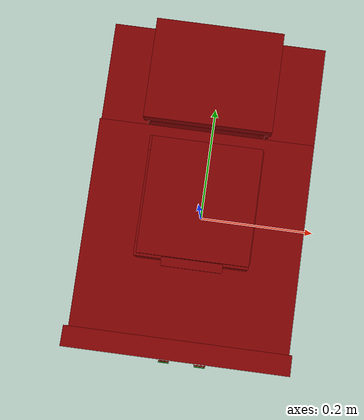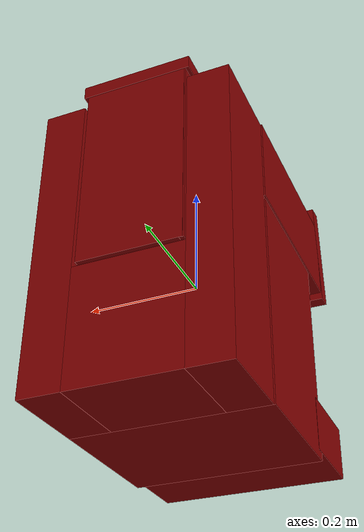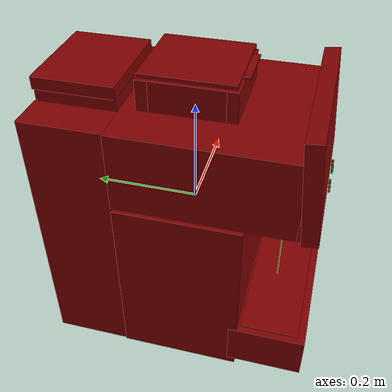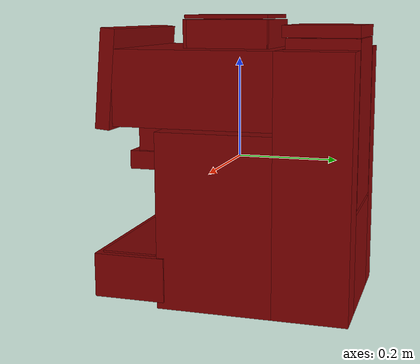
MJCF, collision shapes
<?xml version='1.0' encoding='UTF-8'?>
<mujoco model="model">
  <compiler angle="radian"/>
  <asset>
    <mesh file="visuals/Body001.obj" name="Body001_vis"/>
    <mesh file="visuals/Button001.obj" name="Button001_vis"/>
    <mesh file="visuals/Button002.obj" name="Button002_vis"/>
    <mesh file="visuals/Container001_Clear.obj" name="Container001_Clear_vis"/>
    <mesh file="visuals/Lid001.obj" name="Lid001_vis"/>
    <mesh file="visuals/Lid002.obj" name="Lid002_vis"/>
    <mesh file="visuals/Lid003.obj" name="Lid003_vis"/>
    <texture file="visuals/T_BC001.png" name="Body001_material" type="2d"/>
    <material name="Body001_material" rgba="1 1 1 1.0" texture="Body001_material" shininess="0.4472135901451111" specular="0.3103448502657381"/>
    <texture file="visuals/T_BC001.png" name="Button001_material" type="2d"/>
    <material name="Button001_material" rgba="1 1 1 1.0" texture="Button001_material" shininess="0.4472135901451111" specular="0.3103448502657381"/>
    <texture file="visuals/T_BC001.png" name="Button002_material" type="2d"/>
    <material name="Button002_material" rgba="1 1 1 1.0" texture="Button002_material" shininess="0.4472135901451111" specular="0.3103448502657381"/>
    <texture file="visuals/T_BC001.png" name="Container001_Clear_material" type="2d"/>
    <material name="Container001_Clear_material" rgba="1 1 1 0.15636134147644043" texture="Container001_Clear_material" shininess="0.4472135901451111" specular="0.3103448502657381"/>
    <texture file="visuals/T_BC001.png" name="Lid003_material" type="2d"/>
    <material name="Lid003_material" rgba="1 1 1 1.0" texture="Lid003_material" shininess="0.4472135901451111" specular="0.3103448502657381"/>
    <texture file="visuals/T_BC001.png" name="Lid001_material" type="2d"/>
    <material name="Lid001_material" rgba="1 1 1 1.0" texture="Lid001_material" shininess="0.4472135901451111" specular="0.3103448502657381"/>
    <texture file="visuals/T_BC001.png" name="Lid002_material" type="2d"/>
    <material name="Lid002_material" rgba="1 1 1 1.0" texture="Lid002_material" shininess="0.4472135901451111" specular="0.3103448502657381"/>
  </asset>
  <default>
    <default class="visual">
      <geom conaffinity="0" contype="0" group="1" type="mesh"/>
    </default>
    <default class="collision">
      <geom group="0" rgba="0.5 0 0 0.5"/>
    </default>
    <default class="spawn">
      <geom group="0" rgba="1 1 1 0.5" contype="0" conaffinity="0"/>
      <site group="0" rgba="1 1 1 0.5"/>
    </default>
    <default class="region">
      <geom group="1" conaffinity="0" contype="0" rgba="0 1 0 0"/>
    </default>
  </default>
  <worldbody>
    <body>
      <body name="object">
        <geom class="collision" type="box" pos="-0.026567135006189346 -0.24985025823116302 0.09178917855024338" size="0.008363605476915836 0.0005639980081468821 0.008365248329937458" quat="0.9992254376411438 -0.039351269602775574 -0.0 0.0" name="start_button_1" rgba="0.0 0.5 0 0.5"/>
        <geom class="collision" type="box" pos="0.0322684608399868 -0.2503197491168976 0.09151936322450638" size="0.009126408025622368 0.0006154375150799751 0.009128202684223652" quat="0.9988632798194885 -0.04766746982932091 -0.0 0.0" name="start_button_2" rgba="0.0 0.5 0 0.5"/>
        <site type="cylinder" rgba="0.8 0.5 0.25 1" size="0.002499999711290002 0.07244519144296646" pos="-0.00021030008792877197 -0.17875368893146515 -0.11210878938436508" name="coffee_liquid"/>
        <site rgba="0 0 0 0" size="0.009999999776482582 0.009999999776482582" pos="-0.0007186383008956909 -0.17851491272449493 -0.17952339351177216" name="receptacle_place_site"/>
        <geom mesh="Body001_vis" type="mesh" solimp="0.998 0.998 0.001" solref="0.001 1" density="100" friction="0.95 0.3 0.1" class="visual" material="Body001_material"/>
        <geom class="collision" type="box" pos="-0.0018081322778016329 -0.008352495729923248 -0.11013568192720413" size="0.16140811145305634 0.11595714092254639 0.1767483353614807" quat="1.0 0.0 0.0 0.0"/>
        <geom class="collision" type="box" pos="-0.0018081322778016329 -0.05096442997455597 0.14814423024654388" size="0.16140766441822052 0.15856853127479553 0.0741918683052063" quat="1.0 0.0 0.0 0.0"/>
        <geom class="collision" type="box" pos="-0.0018081322778016329 -0.2232503592967987 0.16413545608520508" size="0.16140811145305634 0.014656653627753258 0.0975407287478447" quat="0.9989863634109497 -0.0450136698782444 0.0 0.0"/>
        <geom class="collision" type="box" pos="2.3095635697245598e-05 -0.1777673363685608 0.04332222416996956" size="0.040392324328422546 0.027623746544122696 0.03613743185997009" quat="1.0 0.0 0.0 0.0"/>
        <geom class="collision" type="box" pos="2.3095635697245598e-05 -0.17800618708133698 -0.010676476173102856" size="0.050148896872997284 0.04398461431264877 0.019010473042726517" quat="1.0 0.0 0.0 0.0"/>
        <geom class="collision" type="box" pos="2.3095635697245598e-05 -0.18215309083461761 -0.22792154550552368" size="0.16366252303123474 0.07314565032720566 0.04473858326673508" quat="1.0 0.0 0.0 0.0"/>
        <geom class="collision" type="cylinder" pos="-0.0004294932004995644 -0.17851823568344116 -0.03356647491455078" size="0.007415913511067629 0.005615164991468191" quat="1.0 0.0 0.0 0.0"/>
        <geom class="collision" type="box" pos="0.002026383299380541 -0.0810312032699585 0.2487303614616394" size="0.08055607974529266 0.009867528453469276 0.028551267459988594" quat="1.0 0.0 0.0 0.0"/>
        <geom class="collision" type="box" pos="0.12464404106140137 0.1814788430929184 -0.03227414935827255" size="0.03495582193136215 0.0738741084933281 0.25461024045944214" quat="1.0 0.0 0.0 0.0"/>
        <geom class="collision" type="box" pos="-0.12579992413520813 0.1814788430929184 -0.03227414935827255" size="0.03495582938194275 0.07387413084506989 0.25461024045944214" quat="1.0 0.0 0.0 0.0"/>
        <geom class="collision" type="box" pos="-0.0005779396742582321 0.1814788430929184 -0.18736642599105835" size="0.09026603400707245 0.07387415319681168 0.09951797872781754" quat="1.0 0.0 0.0 0.0"/>
        <geom class="collision" type="box" pos="0.002026383299380541 0.06972206383943558 0.2487303614616394" size="0.08055607974529266 0.01049297396093607 0.028551267459988594" quat="1.0 0.0 0.0 0.0"/>
        <geom class="collision" type="box" pos="0.07269097119569778 -0.0028506682720035315 0.2487303614616394" size="0.08055607974529266 0.011447040364146233 0.028551271185278893" quat="0.70710688829422 0.0 0.0 -0.7071066498756409"/>
        <geom class="collision" type="box" pos="-0.06724951416254044 -0.002850667806342244 0.2487303614616394" size="0.08055607974529266 0.010927602648735046 0.028551271185278893" quat="0.70710688829422 0.0 0.0 -0.7071066498756409"/>
        <body name="Button001">
          <joint axis="0.0 0.9964338541030884 -0.08437718451023102" pos="-0.026818474754691124 -0.24712657928466797 0.09142328053712845" limited="true" name="Button001_joint" range="0.0 0.004" type="slide" damping="1" frictionloss="1" armature=".01" stiffness="0.05"/>
          <geom mesh="Button001_vis" type="mesh" solimp="0.998 0.998 0.001" solref="0.001 1" density="100" friction="0.95 0.3 0.1" class="visual" material="Button001_material"/>
          <geom class="collision" type="box" pos="-0.026567135006189346 -0.2478729486465454 0.09162691980600357" size="0.008363605476915836 0.0008957666577771306 0.008366292342543602" quat="0.9992254376411438 -0.039351269602775574 -0.0 0.0"/>
        </body>
        <body name="Button002">
          <joint axis="0.0 0.9962309002876282 -0.08674114942550659" pos="0.03204399719834328 -0.24698294699192047 0.09157859534025192" limited="true" name="Button002_joint" range="0.0 0.004" type="slide" damping="1" frictionloss="1" armature=".01" stiffness="0.05"/>
          <geom mesh="Button002_vis" type="mesh" solimp="0.998 0.998 0.001" solref="0.001 1" density="100" friction="0.95 0.3 0.1" class="visual" material="Button002_material"/>
          <geom class="collision" type="box" pos="0.0322684608399868 -0.2481653392314911 0.0913064107298851" size="0.009126408025622368 0.000977465184405446 0.009129340760409832" quat="0.9988632798194885 -0.04766746982932091 -0.0 0.0"/>
        </body>
        <body name="Container001_Clear">
          <joint axis="0.0 0.0 1.0" pos="-0.0005515962839126587 0.18424837291240692 0.07957255840301514" limited="true" name="Container001_Clear_joint" range="0.0 0.1" type="slide" damping="1" frictionloss="1" armature=".01" stiffness="0.05"/>
          <geom mesh="Container001_Clear_vis" type="mesh" solimp="0.998 0.998 0.001" solref="0.001 1" density="100" friction="0.95 0.3 0.1" class="visual" material="Container001_Clear_material"/>
          <geom class="collision" type="box" pos="-0.0005779396742582321 0.25053077936172485 0.08116258680820465" size="0.08521081507205963 0.004822235554456711 0.1619313508272171" quat="1.0 0.0 0.0 0.0"/>
          <geom class="collision" type="box" pos="-0.08414202183485031 0.18418189883232117 0.08116258680820465" size="0.004039258696138859 0.0706646591424942 0.1619313508272171" quat="1.0 0.0 0.0 0.0"/>
          <geom class="collision" type="box" pos="-0.0005779396742582321 0.11855147778987885 0.08116258680820465" size="0.08521081507205963 0.004822235554456711 0.1619313508272171" quat="1.0 0.0 0.0 0.0"/>
          <geom class="collision" type="box" pos="0.08096463233232498 0.18418189883232117 0.08116258680820465" size="0.004039258696138859 0.0706646591424942 0.1619313508272171" quat="1.0 0.0 0.0 0.0"/>
          <geom class="collision" type="box" pos="-0.0005779396742582321 0.18492837250232697 -0.07753968238830566" size="0.08521081507205963 0.062457527965307236 0.005437565501779318" quat="1.0 0.0 0.0 0.0"/>
          <body name="Lid003">
            <joint axis="0.0 0.0 1.0" pos="-0.0005515962839126587 0.18157488107681274 0.24958136677742004" limited="true" name="Lid003_joint" range="0.0 0.1" type="slide" damping="1" frictionloss="1" armature=".01" stiffness="0.05"/>
            <geom mesh="Lid003_vis" type="mesh" solimp="0.998 0.998 0.001" solref="0.001 1" density="100" friction="0.95 0.3 0.1" class="visual" material="Lid003_material"/>
            <geom class="collision" type="box" pos="-0.0005515934899449348 0.18174636363983154 0.2560531497001648" size="0.09321165084838867 0.07360666245222092 0.011472675018012524" quat="1.0 0.0 0.0 0.0"/>
          </body>
        </body>
        <body name="Lid001">
          <joint axis="0.0 0.0 1.0" pos="0.003058146685361862 -0.009461015462875366 0.28329718112945557" limited="true" name="Lid001_joint" range="0.0 0.1" type="slide" damping="1" frictionloss="1" armature=".01" stiffness="0.05"/>
          <geom mesh="Lid001_vis" type="mesh" solimp="0.998 0.998 0.001" solref="0.001 1" density="100" friction="0.95 0.3 0.1" class="visual" material="Lid001_material"/>
          <geom class="collision" type="box" pos="0.0042525408789515495 -0.004495017230510712 0.28284165263175964" size="0.07832992821931839 0.08269385248422623 0.003769206115975976" quat="1.0 0.0 0.0 0.0"/>
          <geom class="collision" type="box" pos="0.0042525408789515495 -0.09441821277141571 0.28284165263175964" size="0.04286365583539009 0.00635392963886261 0.0020625826437026262" quat="1.0 0.0 0.0 0.0"/>
        </body>
        <body name="Lid002">
          <joint axis="0.0 0.0 1.0" pos="0.0008950179908424616 -0.18545866012573242 -0.18292519450187683" limited="true" name="Lid002_joint" range="0.0 0.06" type="slide" damping="1" frictionloss="1" armature=".01" stiffness="0.05"/>
          <geom mesh="Lid002_vis" type="mesh" solimp="0.998 0.998 0.001" solref="0.001 1" density="100" friction="0.95 0.3 0.1" class="visual" material="Lid002_material"/>
          <geom class="collision" type="box" pos="0.0008485887665301561 -0.18492485582828522 -0.18040791153907776" size="0.15218988060951233 0.05581967905163765 0.001768449554219842" quat="1.0 0.0 0.0 0.0"/>
        </body>
        <geom class="region" name="reg_main" type="box" pos="3.725290298461914e-09 0.0 0.0" size="0.16923843324184418 0.25535309314727783 0.2874471843242645"/>
      </body>
    </body>
  </worldbody>
  <actuator>
    <motor name="Button001_joint_actuator" joint="Button001_joint" gear="0.5"/>
    <motor name="Button002_joint_actuator" joint="Button002_joint" gear="0.5"/>
    <motor name="Container001_Clear_joint_actuator" joint="Container001_Clear_joint" gear="45"/>
    <motor name="Lid001_joint_actuator" joint="Lid001_joint" gear="3.5"/>
    <motor name="Lid002_joint_actuator" joint="Lid002_joint" gear="5"/>
    <motor name="Lid003_joint_actuator" joint="Lid003_joint" gear="10"/>
  </actuator>
</mujoco>
